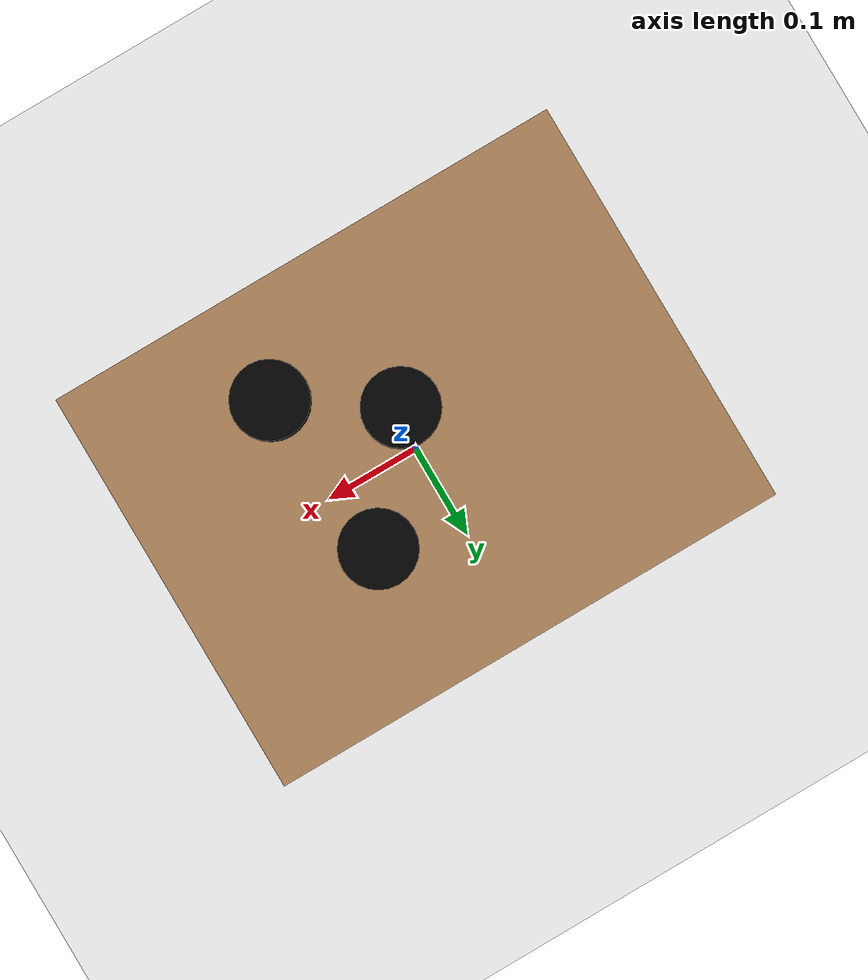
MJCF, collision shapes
<mujoco model="press_three_buttons">
  <compiler meshdir="../../../meshes"/>

  <visual>
    <map znear="0.001"/>
  </visual>

  <asset>
    <!-- meshdir resolved to assets/meshes/ via robotiq.xml compiler -->
    <mesh name="blue_button_mesh"  file="press_three_buttons/blue_button/blue_button_mesh.obj"/>
    <mesh name="green_button_mesh" file="press_three_buttons/green_button/green_button_mesh.obj"/>
    <mesh name="pink_button_mesh"  file="press_three_buttons/pink_button/pink_button_mesh.obj"/>

    <material name="blue_button_mat"  rgba="0.10 0.35 0.95 1" reflectance="0.2"/>
    <material name="green_button_mat" rgba="0.10 0.80 0.25 1" reflectance="0.2"/>
    <material name="pink_button_mat"  rgba="0.95 0.25 0.65 1" reflectance="0.2"/>
  </asset>

  <worldbody>
    <light name="demo_light" pos="0 0 1.5" dir="0 0 -1"/>
    <geom name="floor" type="plane" size="2 2 0.1" rgba="0.85 0.85 0.85 1"/>

    <!-- table: center z=0.03, top surface z=0.06 -->
    <body name="table" pos="0 0 0.03">
      <geom name="table_top" type="box" size="0.28 0.22 0.03" rgba="0.6 0.45 0.3 1"/>
    </body>

    <body name="button_blue" pos="-0.007 -0.040 0.08">
      <geom name="button_blue_col" type="cylinder" size="0.040 0.02"
            mass="0.1" rgba="0 0 0 0" contype="1" conaffinity="1"/>
      <geom name="button_blue_vis" type="mesh" mesh="blue_button_mesh" material="blue_button_mat"
            euler="0.959931089 0.052359878 0" density="0"
            contype="0" conaffinity="0" group="1"/>
      <site name="button_blue_site" pos="0 0 0" size="0.004" rgba="0 0 1 0"/>
    </body>

    <body name="button_green" pos="0.099 -0.111 0.08">
      <geom name="button_green_col" type="cylinder" size="0.040 0.02"
            mass="0.1" rgba="0 0 0 0" contype="1" conaffinity="1"/>
      <geom name="button_green_vis" type="mesh" mesh="green_button_mesh" material="green_button_mat"
            euler="0.959931089 0.052359878 0" density="0"
            contype="0" conaffinity="0" group="1"/>
      <site name="button_green_site" pos="0 0 0" size="0.004" rgba="0 1 0 0"/>
    </body>

    <body name="button_pink" pos="0.082 0.067 0.08">
      <geom name="button_pink_col" type="cylinder" size="0.040 0.02"
            mass="0.1" rgba="0 0 0 0" contype="1" conaffinity="1"/>
      <geom name="button_pink_vis" type="mesh" mesh="pink_button_mesh" material="pink_button_mat"
            euler="0.959931089 0.052359878 0" density="0"
            contype="0" conaffinity="0" group="1"/>
      <site name="button_pink_site" pos="0 0 0" size="0.004" rgba="1 0 1 0"/>
    </body>

    <!-- Side camera: looking from +X toward the task area -->
    <camera name="env0_cam" pos="0.9 0 0.5" xyaxes="0 1 0 -0.406 0 0.914" fovy="45"/>
    <!-- Front camera: looking from -Y toward the task area -->
    <camera name="env1_cam" pos="0 -0.8 0.5" xyaxes="1 0 0 0 0.447 0.894" fovy="45"/>
  </worldbody>

</mujoco>
